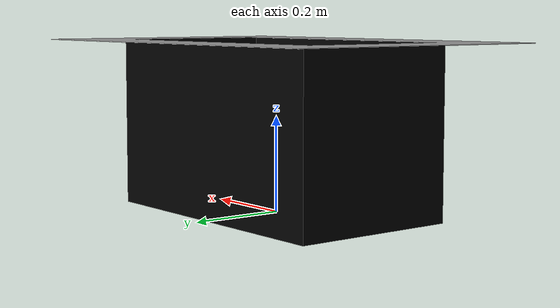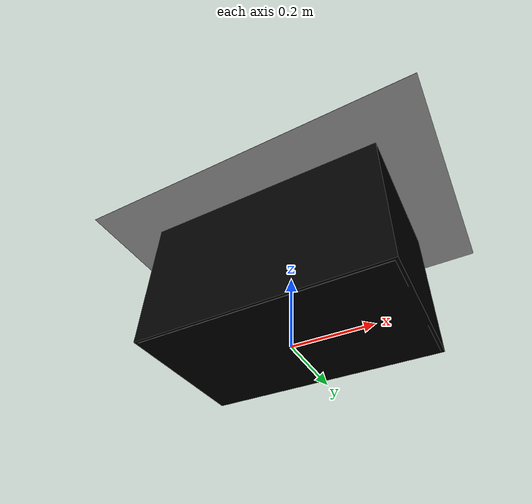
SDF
<?xml version="1.0" ?>
<sdf version="1.5">
  <model name="marker_bin">
    <static>true</static>
    <link name="base_link">

      <collision name="collision">
        <pose>0 0 0 0 0 0</pose>
        <geometry>
          <mesh>
            <uri>model://marker_bin/meshes/marker_bin.dae</uri>
          </mesh>
        </geometry>
      </collision>

      <visual name="visual">
        <cast_shadows>true</cast_shadows>
        <pose>0 0 0 0 0 0</pose>
        <geometry>
          <mesh>
            <uri>model://marker_bin/meshes/marker_bin.dae</uri>
          </mesh>
        </geometry>
      </visual>
    </link>
  </model>
</sdf>
